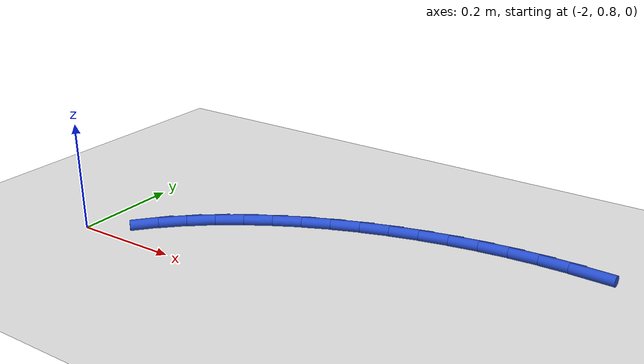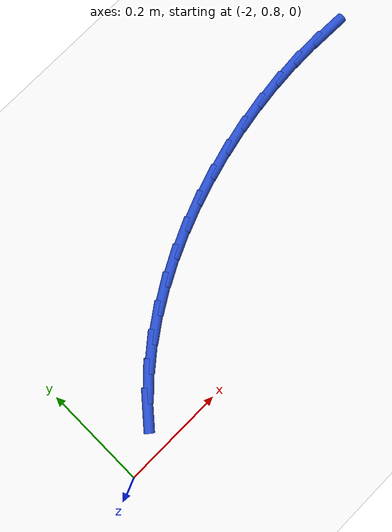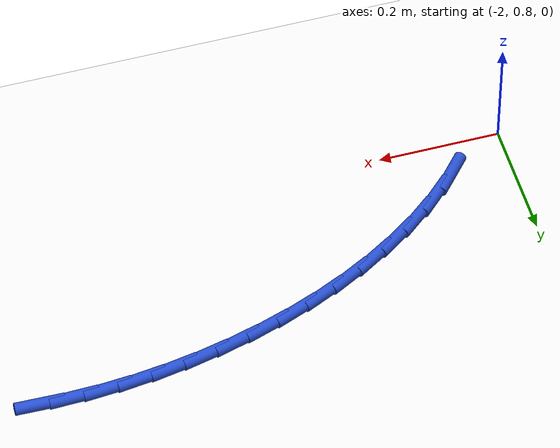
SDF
<sdf version="1.6">
 <world name="default">
  <model name="ground_plane">
   <static>1</static>
   <link name="link">
    <collision name="collision">
     <geometry><plane><normal>0 0 1</normal><size>100 100</size></plane></geometry>
     <surface><friction><ode><mu>100</mu><mu2>50</mu2></ode></friction></surface>
    </collision>
    <visual name="visual">
     <cast_shadows>0</cast_shadows>
     <geometry><plane><normal>0 0 1</normal><size>100 100</size></plane></geometry>
     <material>
      <script><uri>file://media/materials/scripts/gazebo.material</uri><name>Gazebo/WhiteGlow</name></script>
     </material>
    </visual>
   </link>
  </model>
  <model name="line">
   <link name="link_33">
    <pose>-1.1554998581733043 1.1288486018718875 0.01 0 1.57 -0.02651093895406461</pose>
    <collision name="collision">
     <geometry><cylinder><radius>0.01</radius><length>0.08</length></cylinder></geometry>
    </collision>
    <visual name="visual">
     <material>
      <script><name>Gazebo/Blue</name><uri>file://media/materials/scripts/gazebo.material</uri></script>
     </material>
     <geometry><cylinder><radius>0.01</radius><length>0.08</length></cylinder></geometry>
    </visual>
   </link>
   <link name="link_34">
    <pose>-1.2092367658091747 1.1302735515978621 0.01 0 1.57 0.027409829770626403</pose>
    <collision name="collision">
     <geometry><cylinder><radius>0.01</radius><length>0.08</length></cylinder></geometry>
    </collision>
    <visual name="visual">
     <material>
      <script><name>Gazebo/Blue</name><uri>file://media/materials/scripts/gazebo.material</uri></script>
     </material>
     <geometry><cylinder><radius>0.01</radius><length>0.08</length></cylinder></geometry>
    </visual>
   </link>
   <link name="link_35">
    <pose>-1.2633450356180378 1.128790081604883 0.01 0 1.57 0.07919958954554689</pose>
    <collision name="collision">
     <geometry><cylinder><radius>0.01</radius><length>0.08</length></cylinder></geometry>
    </collision>
    <visual name="visual">
     <material>
      <script><name>Gazebo/Blue</name><uri>file://media/materials/scripts/gazebo.material</uri></script>
     </material>
     <geometry><cylinder><radius>0.01</radius><length>0.08</length></cylinder></geometry>
    </visual>
   </link>
   <link name="link_36">
    <pose>-1.3176408789897054 1.1244808593526163 0.01 0 1.57 0.129154666126111</pose>
    <collision name="collision">
     <geometry><cylinder><radius>0.01</radius><length>0.08</length></cylinder></geometry>
    </collision>
    <visual name="visual">
     <material>
      <script><name>Gazebo/Blue</name><uri>file://media/materials/scripts/gazebo.material</uri></script>
     </material>
     <geometry><cylinder><radius>0.01</radius><length>0.08</length></cylinder></geometry>
    </visual>
   </link>
   <link name="link_37">
    <pose>-1.371940507313992 1.1174285523007277 0.01 0 1.57 0.17757729261273236</pose>
    <collision name="collision">
     <geometry><cylinder><radius>0.01</radius><length>0.08</length></cylinder></geometry>
    </collision>
    <visual name="visual">
     <material>
      <script><name>Gazebo/Blue</name><uri>file://media/materials/scripts/gazebo.material</uri></script>
     </material>
     <geometry><cylinder><radius>0.01</radius><length>0.08</length></cylinder></geometry>
    </visual>
   </link>
   <link name="link_38">
    <pose>-1.4260601319807118 1.1077158279088835 0.01 0 1.57 0.22508895223100242</pose>
    <collision name="collision">
     <geometry><cylinder><radius>0.01</radius><length>0.08</length></cylinder></geometry>
    </collision>
    <visual name="visual">
     <material>
      <script><name>Gazebo/Blue</name><uri>file://media/materials/scripts/gazebo.material</uri></script>
     </material>
     <geometry><cylinder><radius>0.01</radius><length>0.08</length></cylinder></geometry>
    </visual>
   </link>
   <link name="link_39">
    <pose>-1.4797995207081933 1.095411174670484 0.01 0 1.57 0.27351020603397724</pose>
    <collision name="collision">
     <geometry><cylinder><radius>0.01</radius><length>0.08</length></cylinder></geometry>
    </collision>
    <visual name="visual">
     <material>
      <script><name>Gazebo/Blue</name><uri>file://media/materials/scripts/gazebo.material</uri></script>
     </material>
     <geometry><cylinder><radius>0.01</radius><length>0.08</length></cylinder></geometry>
    </visual>
   </link>
   <link name="link_40">
    <pose>-1.5328839255890674 1.0805188281203382 0.01 0 1.57 0.3237541256382354</pose>
    <collision name="collision">
     <geometry><cylinder><radius>0.01</radius><length>0.08</length></cylinder></geometry>
    </collision>
    <visual name="visual">
     <material>
      <script><name>Gazebo/Blue</name><uri>file://media/materials/scripts/gazebo.material</uri></script>
     </material>
     <geometry><cylinder><radius>0.01</radius><length>0.08</length></cylinder></geometry>
    </visual>
   </link>
   <link name="link_41">
    <pose>-1.5850175017618253 1.0630248324178448 0.01 0 1.57 0.3763462862635824</pose>
    <collision name="collision">
     <geometry><cylinder><radius>0.01</radius><length>0.08</length></cylinder></geometry>
    </collision>
    <visual name="visual">
     <material>
      <script><name>Gazebo/Blue</name><uri>file://media/materials/scripts/gazebo.material</uri></script>
     </material>
     <geometry><cylinder><radius>0.01</radius><length>0.08</length></cylinder></geometry>
    </visual>
   </link>
   <link name="link_42">
    <pose>-1.6359044030252963 1.0429152305672473 0.01 0 1.57 0.4318201307244347</pose>
    <collision name="collision">
     <geometry><cylinder><radius>0.01</radius><length>0.08</length></cylinder></geometry>
    </collision>
    <visual name="visual">
     <material>
      <script><name>Gazebo/Blue</name><uri>file://media/materials/scripts/gazebo.material</uri></script>
     </material>
     <geometry><cylinder><radius>0.01</radius><length>0.08</length></cylinder></geometry>
    </visual>
   </link>
   <link name="link_43">
    <pose>-1.6852487831783112 1.020176065572791 0.01 0 1.57 0.4907132623460301</pose>
    <collision name="collision">
     <geometry><cylinder><radius>0.01</radius><length>0.08</length></cylinder></geometry>
    </collision>
    <visual name="visual">
     <material>
      <script><name>Gazebo/Blue</name><uri>file://media/materials/scripts/gazebo.material</uri></script>
     </material>
     <geometry><cylinder><radius>0.01</radius><length>0.08</length></cylinder></geometry>
    </visual>
   </link>
   <link name="link_44">
    <pose>-1.7327547960196994 0.9947933804387195 0.01 0 1.57 0.5535559886023529</pose>
    <collision name="collision">
     <geometry><cylinder><radius>0.01</radius><length>0.08</length></cylinder></geometry>
    </collision>
    <visual name="visual">
     <material>
      <script><name>Gazebo/Blue</name><uri>file://media/materials/scripts/gazebo.material</uri></script>
     </material>
     <geometry><cylinder><radius>0.01</radius><length>0.08</length></cylinder></geometry>
    </visual>
   </link>
   <link name="link_45">
    <pose>-1.7781265953482914 0.9667532181692775 0.01 0 1.57 0.6208494564828072</pose>
    <collision name="collision">
     <geometry><cylinder><radius>0.01</radius><length>0.08</length></cylinder></geometry>
    </collision>
    <visual name="visual">
     <material>
      <script><name>Gazebo/Blue</name><uri>file://media/materials/scripts/gazebo.material</uri></script>
     </material>
     <geometry><cylinder><radius>0.01</radius><length>0.08</length></cylinder></geometry>
    </visual>
   </link>
   <link name="link_46">
    <pose>-1.8210683349629189 0.9360416217687092 0.01 0 1.57 0.6930305198586969</pose>
    <collision name="collision">
     <geometry><cylinder><radius>0.01</radius><length>0.08</length></cylinder></geometry>
    </collision>
    <visual name="visual">
     <material>
      <script><name>Gazebo/Blue</name><uri>file://media/materials/scripts/gazebo.material</uri></script>
     </material>
     <geometry><cylinder><radius>0.01</radius><length>0.08</length></cylinder></geometry>
    </visual>
   </link>
   <link name="link_47">
    <pose>-1.8612841686624104 0.9026446342412585 0.01 0 1.57 0.7704212551513663</pose>
    <collision name="collision">
     <geometry><cylinder><radius>0.01</radius><length>0.08</length></cylinder></geometry>
    </collision>
    <visual name="visual">
     <material>
      <script><name>Gazebo/Blue</name><uri>file://media/materials/scripts/gazebo.material</uri></script>
     </material>
     <geometry><cylinder><radius>0.01</radius><length>0.08</length></cylinder></geometry>
    </visual>
   </link>
   <link name="link_48">
    <pose>-1.8984782502455968 0.8665482985911707 0.01 0 1.57 0.8530891605178752</pose>
    <collision name="collision">
     <geometry><cylinder><radius>0.01</radius><length>0.08</length></cylinder></geometry>
    </collision>
    <visual name="visual">
     <material>
      <script><name>Gazebo/Blue</name><uri>file://media/materials/scripts/gazebo.material</uri></script>
     </material>
     <geometry><cylinder><radius>0.01</radius><length>0.08</length></cylinder></geometry>
    </visual>
   </link>
  </model>
 </world>
</sdf>
